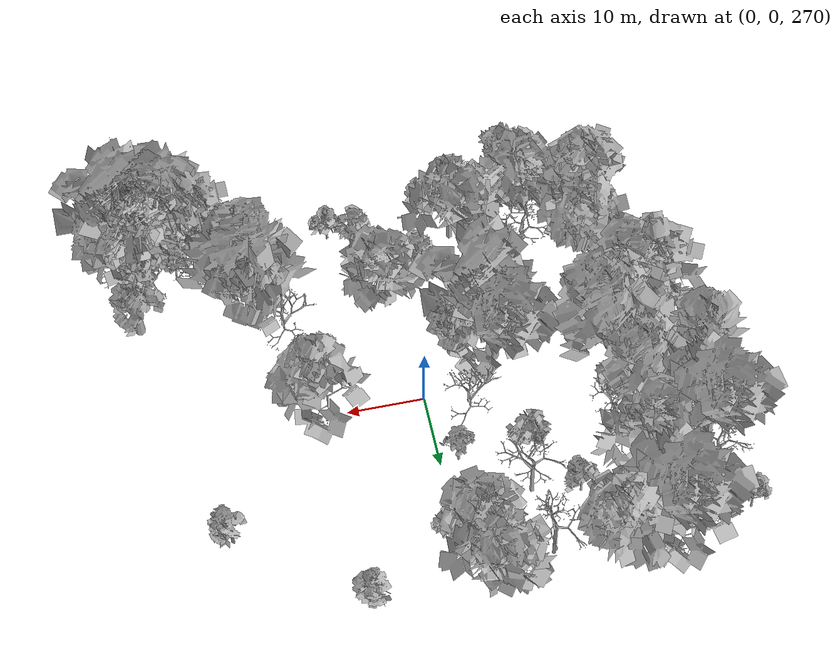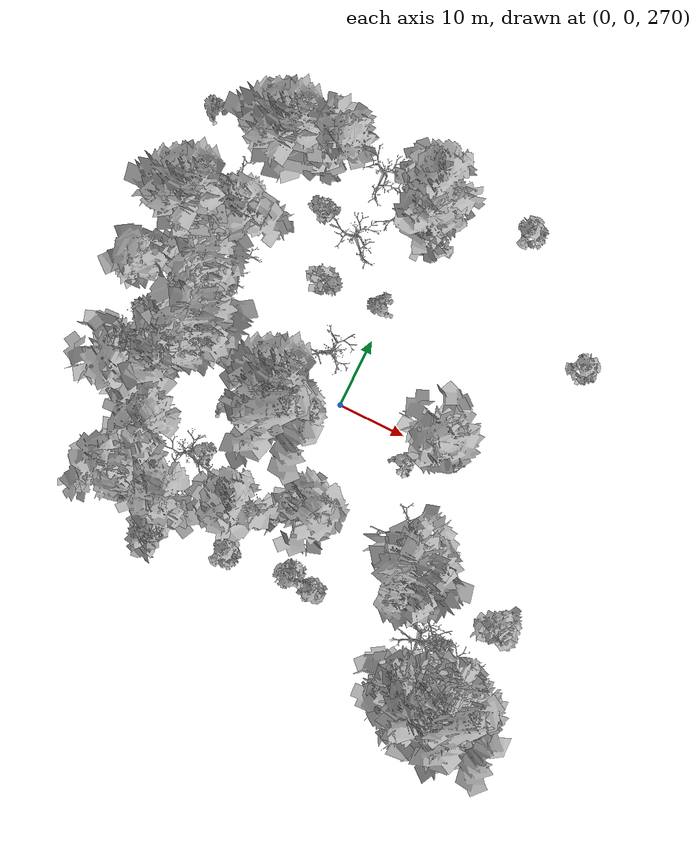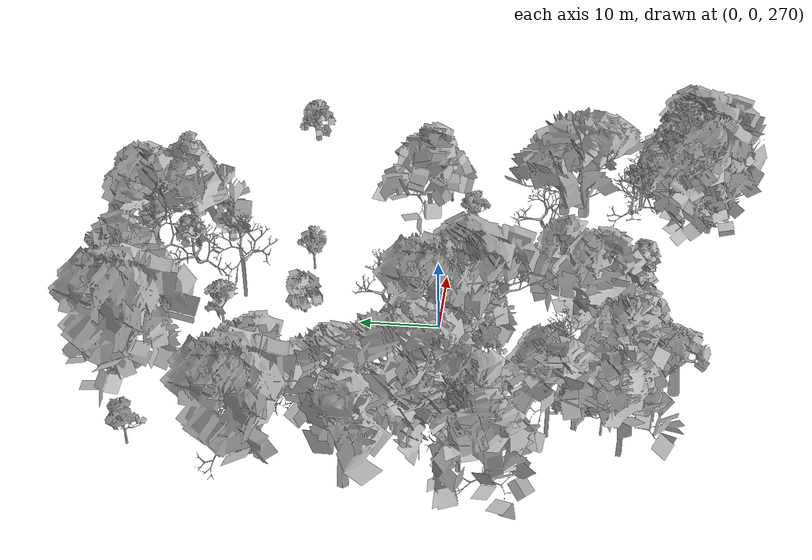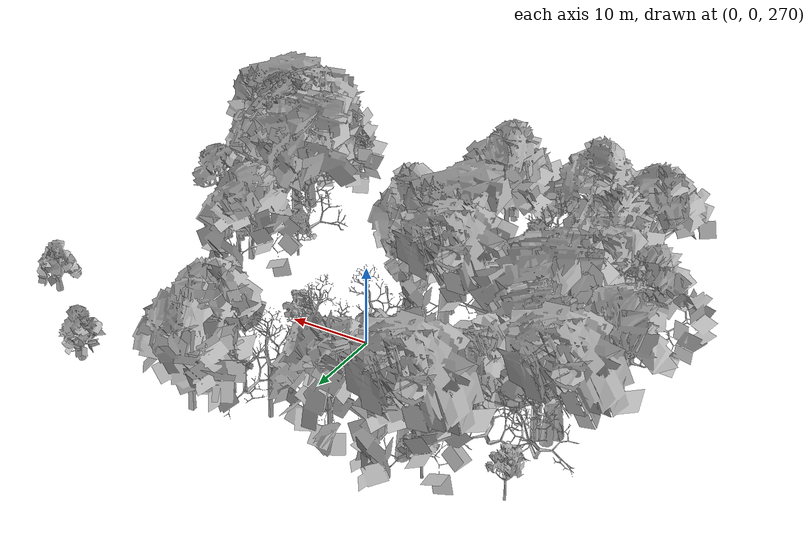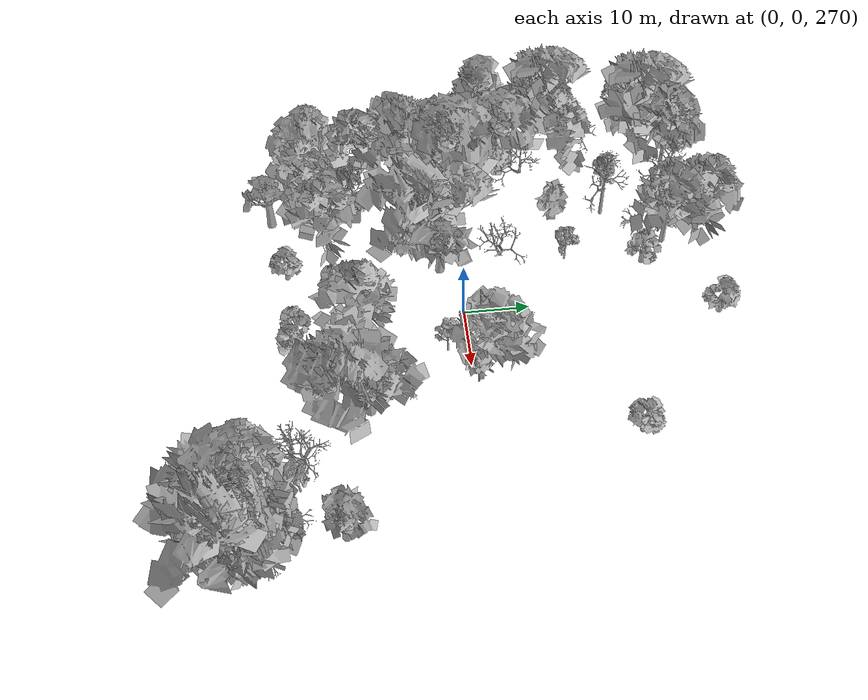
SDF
<sdf version="1.6">
 <world name="default">
  <light name="sun" type="directional">
   <pose>0 0 10 0 -0 0</pose>
   <diffuse>0.8 0.8 0.8 1</diffuse>
   <specular>0.2 0.2 0.2 1</specular>
   <attenuation>
    <range>1000</range>
    <constant>0.9</constant>
    <linear>0.01</linear>
    <quadratic>0.001</quadratic>
   </attenuation>
   <direction>-0.5 0.1 -0.9</direction>
  </light>
  <scene>
   <sky><clouds><speed>12</speed></clouds></sky>
   <ambient>0.4 0.4 0.4 1</ambient>
   <background>0.7 0.7 0.7 1</background>
   <shadows>1</shadows>
  </scene>
  <spherical_coordinates>
   <surface_model>EARTH_WGS84</surface_model>
   <latitude_deg>47.3977</latitude_deg>
   <longitude_deg>8.54559</longitude_deg>
   <elevation>0</elevation>
   <heading_deg>0</heading_deg>
  </spherical_coordinates>
  <physics name="default_physics" default="0" type="ode">
   <ode>
    <solver>
     <type>quick</type>
     <iters>100</iters>
     <sor>1.3</sor>
     <use_dynamic_moi_rescaling>0</use_dynamic_moi_rescaling>
    </solver>
    <constraints>
     <cfm>0</cfm>
     <erp>0.2</erp>
     <contact_max_correcting_vel>100</contact_max_correcting_vel>
     <contact_surface_layer>0.001</contact_surface_layer>
    </constraints>
   </ode>
   <max_step_size>0.002</max_step_size>
   <real_time_factor>1</real_time_factor>
   <real_time_update_rate>500</real_time_update_rate>
  </physics>
  <gravity>0 0 -9.8</gravity>
  <magnetic_field>6e-06 2.3e-05 -4.2e-05</magnetic_field>
  <atmosphere type="adiabatic"/>
  <model name="my_mesh0">
   <pose>31.1026 -31.3747 269.724 0 -0 0.931872</pose>
   <static>1</static>
   <link name="body">
    <visual name="visual">
     <geometry><mesh><uri>model://trees/12.dae</uri><scale>1 1 1</scale></mesh></geometry>
    </visual>
    <collision name="collision">
     <geometry><mesh><uri>model://trees/12.dae</uri><scale>1 1 1</scale></mesh></geometry>
    </collision>
   </link>
  </model>
  <model name="my_mesh1">
   <pose>33.8099 -32.5525 267.701 0 0 -0.004868</pose>
   <static>1</static>
   <link name="body">
    <visual name="visual">
     <geometry><mesh><uri>model://trees/18.dae</uri><scale>1 1 1</scale></mesh></geometry>
    </visual>
    <collision name="collision">
     <geometry><mesh><uri>model://trees/18.dae</uri><scale>1 1 1</scale></mesh></geometry>
    </collision>
   </link>
  </model>
  <model name="my_mesh2">
   <pose>25.4293 -24.8843 271.442 0 0 -1.15736</pose>
   <static>1</static>
   <link name="body">
    <visual name="visual">
     <geometry><mesh><uri>model://trees/17.dae</uri><scale>1 1 1</scale></mesh></geometry>
    </visual>
    <collision name="collision">
     <geometry><mesh><uri>model://trees/17.dae</uri><scale>1 1 1</scale></mesh></geometry>
    </collision>
   </link>
  </model>
  <model name="my_mesh3">
   <pose>22.4646 -33.9259 270.494 0 0 -0.289776</pose>
   <static>1</static>
   <link name="body">
    <visual name="visual">
     <geometry><mesh><uri>model://trees/0.dae</uri><scale>1 1 1</scale></mesh></geometry>
    </visual>
    <collision name="collision">
     <geometry><mesh><uri>model://trees/0.dae</uri><scale>1 1 1</scale></mesh></geometry>
    </collision>
   </link>
  </model>
  <model name="my_mesh4">
   <pose>33.7907 -34.5797 267.599 0 0 -0.288787</pose>
   <static>1</static>
   <link name="body">
    <visual name="visual">
     <geometry><mesh><uri>model://trees/19.dae</uri><scale>1 1 1</scale></mesh></geometry>
    </visual>
    <collision name="collision">
     <geometry><mesh><uri>model://trees/19.dae</uri><scale>1 1 1</scale></mesh></geometry>
    </collision>
   </link>
  </model>
  <model name="my_mesh5">
   <pose>26.1434 -34.6077 269.376 0 -0 1.16215</pose>
   <static>1</static>
   <link name="body">
    <visual name="visual">
     <geometry><mesh><uri>model://trees/17.dae</uri><scale>1 1 1</scale></mesh></geometry>
    </visual>
    <collision name="collision">
     <geometry><mesh><uri>model://trees/17.dae</uri><scale>1 1 1</scale></mesh></geometry>
    </collision>
   </link>
  </model>
  <model name="my_mesh6">
   <pose>34.5556 -31.3941 267.979 0 -0 0.312646</pose>
   <static>1</static>
   <link name="body">
    <visual name="visual">
     <geometry><mesh><uri>model://trees/15.dae</uri><scale>1 1 1</scale></mesh></geometry>
    </visual>
    <collision name="collision">
     <geometry><mesh><uri>model://trees/15.dae</uri><scale>1 1 1</scale></mesh></geometry>
    </collision>
   </link>
  </model>
  <model name="my_mesh7">
   <pose>34.8178 -31.1485 267.979 0 0 -0.198866</pose>
   <static>1</static>
   <link name="body">
    <visual name="visual">
     <geometry><mesh><uri>model://trees/12.dae</uri><scale>1 1 1</scale></mesh></geometry>
    </visual>
    <collision name="collision">
     <geometry><mesh><uri>model://trees/12.dae</uri><scale>1 1 1</scale></mesh></geometry>
    </collision>
   </link>
  </model>
  <model name="my_mesh8">
   <pose>31.8874 -31.155 269.517 0 0 -0.700786</pose>
   <static>1</static>
   <link name="body">
    <visual name="visual">
     <geometry><mesh><uri>model://trees/3.dae</uri><scale>1 1 1</scale></mesh></geometry>
    </visual>
    <collision name="collision">
     <geometry><mesh><uri>model://trees/3.dae</uri><scale>1 1 1</scale></mesh></geometry>
    </collision>
   </link>
  </model>
  <model name="my_mesh9">
   <pose>31.0783 -33.8092 268.895 0 -0 0.447519</pose>
   <static>1</static>
   <link name="body">
    <visual name="visual">
     <geometry><mesh><uri>model://trees/11.dae</uri><scale>1 1 1</scale></mesh></geometry>
    </visual>
    <collision name="collision">
     <geometry><mesh><uri>model://trees/11.dae</uri><scale>1 1 1</scale></mesh></geometry>
    </collision>
   </link>
  </model>
  <model name="my_mesh10">
   <pose>30.291 -30.8305 269.932 0 0 -0.232678</pose>
   <static>1</static>
   <link name="body">
    <visual name="visual">
     <geometry><mesh><uri>model://trees/14.dae</uri><scale>1 1 1</scale></mesh></geometry>
    </visual>
    <collision name="collision">
     <geometry><mesh><uri>model://trees/14.dae</uri><scale>1 1 1</scale></mesh></geometry>
    </collision>
   </link>
  </model>
  <model name="my_mesh11">
   <pose>25.0691 -32.2729 270.421 0 -0 0.745523</pose>
   <static>1</static>
   <link name="body">
    <visual name="visual">
     <geometry><mesh><uri>model://trees/12.dae</uri><scale>1 1 1</scale></mesh></geometry>
    </visual>
    <collision name="collision">
     <geometry><mesh><uri>model://trees/12.dae</uri><scale>1 1 1</scale></mesh></geometry>
    </collision>
   </link>
  </model>
  <model name="my_mesh12">
   <pose>34.5095 -34.1776 267.48 0 -0 0.340906</pose>
   <static>1</static>
   <link name="body">
    <visual name="visual">
     <geometry><mesh><uri>model://trees/11.dae</uri><scale>1 1 1</scale></mesh></geometry>
    </visual>
    <collision name="collision">
     <geometry><mesh><uri>model://trees/11.dae</uri><scale>1 1 1</scale></mesh></geometry>
    </collision>
   </link>
  </model>
  <model name="my_mesh13">
   <pose>34.0505 -29.2574 267.8 0 -0 0.782229</pose>
   <static>1</static>
   <link name="body">
    <visual name="visual">
     <geometry><mesh><uri>model://trees/2.dae</uri><scale>1 1 1</scale></mesh></geometry>
    </visual>
    <collision name="collision">
     <geometry><mesh><uri>model://trees/2.dae</uri><scale>1 1 1</scale></mesh></geometry>
    </collision>
   </link>
  </model>
  <model name="my_mesh14">
   <pose>34.93 -29.8383 268.082 0 -0 0.307728</pose>
   <static>1</static>
   <link name="body">
    <visual name="visual">
     <geometry><mesh><uri>model://trees/6.dae</uri><scale>1 1 1</scale></mesh></geometry>
    </visual>
    <collision name="collision">
     <geometry><mesh><uri>model://trees/6.dae</uri><scale>1 1 1</scale></mesh></geometry>
    </collision>
   </link>
  </model>
  <model name="my_mesh15">
   <pose>31.9906 -30.5978 269.635 0 0 -0.146784</pose>
   <static>1</static>
   <link name="body">
    <visual name="visual">
     <geometry><mesh><uri>model://trees/15.dae</uri><scale>1 1 1</scale></mesh></geometry>
    </visual>
    <collision name="collision">
     <geometry><mesh><uri>model://trees/15.dae</uri><scale>1 1 1</scale></mesh></geometry>
    </collision>
   </link>
  </model>
  <model name="my_mesh16">
   <pose>32.7531 -33.7649 268.288 0 0 -0.085245</pose>
   <static>1</static>
   <link name="body">
    <visual name="visual">
     <geometry><mesh><uri>model://trees/1.dae</uri><scale>1 1 1</scale></mesh></geometry>
    </visual>
    <collision name="collision">
     <geometry><mesh><uri>model://trees/1.dae</uri><scale>1 1 1</scale></mesh></geometry>
    </collision>
   </link>
  </model>
  <model name="my_mesh17">
   <pose>33.8393 -18.7424 269.01 0 0 -0.498978</pose>
   <static>1</static>
   <link name="body">
    <visual name="visual">
     <geometry><mesh><uri>model://trees/7.dae</uri><scale>1 1 1</scale></mesh></geometry>
    </visual>
    <collision name="collision">
     <geometry><mesh><uri>model://trees/7.dae</uri><scale>1 1 1</scale></mesh></geometry>
    </collision>
   </link>
  </model>
  <model name="my_mesh18">
   <pose>33.8963 -27.7631 268.065 0 -0 0.210882</pose>
   <static>1</static>
   <link name="body">
    <visual name="visual">
     <geometry><mesh><uri>model://trees/2.dae</uri><scale>1 1 1</scale></mesh></geometry>
    </visual>
    <collision name="collision">
     <geometry><mesh><uri>model://trees/2.dae</uri><scale>1 1 1</scale></mesh></geometry>
    </collision>
   </link>
  </model>
  <model name="my_mesh19">
   <pose>29.6539 -33.7185 269.181 0 -0 0.797457</pose>
   <static>1</static>
   <link name="body">
    <visual name="visual">
     <geometry><mesh><uri>model://trees/9.dae</uri><scale>1 1 1</scale></mesh></geometry>
    </visual>
    <collision name="collision">
     <geometry><mesh><uri>model://trees/9.dae</uri><scale>1 1 1</scale></mesh></geometry>
    </collision>
   </link>
  </model>
  <model name="my_mesh20">
   <pose>34.9906 -33.5164 267.526 0 -0 0.832937</pose>
   <static>1</static>
   <link name="body">
    <visual name="visual">
     <geometry><mesh><uri>model://trees/5.dae</uri><scale>1 1 1</scale></mesh></geometry>
    </visual>
    <collision name="collision">
     <geometry><mesh><uri>model://trees/5.dae</uri><scale>1 1 1</scale></mesh></geometry>
    </collision>
   </link>
  </model>
  <model name="my_mesh21">
   <pose>32.557 -26.4783 268.569 0 -0 0.275402</pose>
   <static>1</static>
   <link name="body">
    <visual name="visual">
     <geometry><mesh><uri>model://trees/18.dae</uri><scale>1 1 1</scale></mesh></geometry>
    </visual>
    <collision name="collision">
     <geometry><mesh><uri>model://trees/18.dae</uri><scale>1 1 1</scale></mesh></geometry>
    </collision>
   </link>
  </model>
  <model name="my_mesh22">
   <pose>28.0944 -33.9789 269.444 0 -0 0.050311</pose>
   <static>1</static>
   <link name="body">
    <visual name="visual">
     <geometry><mesh><uri>model://trees/8.dae</uri><scale>1 1 1</scale></mesh></geometry>
    </visual>
    <collision name="collision">
     <geometry><mesh><uri>model://trees/8.dae</uri><scale>1 1 1</scale></mesh></geometry>
    </collision>
   </link>
  </model>
  <model name="my_mesh23">
   <pose>34.1503 -33.6252 267.721 0 0 -0.248717</pose>
   <static>1</static>
   <link name="body">
    <visual name="visual">
     <geometry><mesh><uri>model://trees/17.dae</uri><scale>1 1 1</scale></mesh></geometry>
    </visual>
    <collision name="collision">
     <geometry><mesh><uri>model://trees/17.dae</uri><scale>1 1 1</scale></mesh></geometry>
    </collision>
   </link>
  </model>
  <model name="my_mesh24">
   <pose>33.8543 -32.2519 267.701 0 0 -0.456008</pose>
   <static>1</static>
   <link name="body">
    <visual name="visual">
     <geometry><mesh><uri>model://trees/3.dae</uri><scale>1 1 1</scale></mesh></geometry>
    </visual>
    <collision name="collision">
     <geometry><mesh><uri>model://trees/3.dae</uri><scale>1 1 1</scale></mesh></geometry>
    </collision>
   </link>
  </model>
  <model name="my_mesh25">
   <pose>23.9134 -34.1685 270.156 0 0 -0.320294</pose>
   <static>1</static>
   <link name="body">
    <visual name="visual">
     <geometry><mesh><uri>model://trees/0.dae</uri><scale>1 1 1</scale></mesh></geometry>
    </visual>
    <collision name="collision">
     <geometry><mesh><uri>model://trees/0.dae</uri><scale>1 1 1</scale></mesh></geometry>
    </collision>
   </link>
  </model>
  <model name="my_mesh26">
   <pose>33.1181 -34.2174 267.84 0 -0 0.120514</pose>
   <static>1</static>
   <link name="body">
    <visual name="visual">
     <geometry><mesh><uri>model://trees/13.dae</uri><scale>1 1 1</scale></mesh></geometry>
    </visual>
    <collision name="collision">
     <geometry><mesh><uri>model://trees/13.dae</uri><scale>1 1 1</scale></mesh></geometry>
    </collision>
   </link>
  </model>
  <model name="my_mesh27">
   <pose>33.0525 -28.7329 267.479 0 0 -0.120977</pose>
   <static>1</static>
   <link name="body">
    <visual name="visual">
     <geometry><mesh><uri>model://trees/5.dae</uri><scale>1 1 1</scale></mesh></geometry>
    </visual>
    <collision name="collision">
     <geometry><mesh><uri>model://trees/5.dae</uri><scale>1 1 1</scale></mesh></geometry>
    </collision>
   </link>
  </model>
  <model name="my_mesh28">
   <pose>28.9178 -34.6829 269.003 0 -0 1.21639</pose>
   <static>1</static>
   <link name="body">
    <visual name="visual">
     <geometry><mesh><uri>model://trees/8.dae</uri><scale>1 1 1</scale></mesh></geometry>
    </visual>
    <collision name="collision">
     <geometry><mesh><uri>model://trees/8.dae</uri><scale>1 1 1</scale></mesh></geometry>
    </collision>
   </link>
  </model>
  <model name="my_mesh29">
   <pose>34.5866 -34.4306 267.435 0 -0 0.946221</pose>
   <static>1</static>
   <link name="body">
    <visual name="visual">
     <geometry><mesh><uri>model://trees/10.dae</uri><scale>1 1 1</scale></mesh></geometry>
    </visual>
    <collision name="collision">
     <geometry><mesh><uri>model://trees/10.dae</uri><scale>1 1 1</scale></mesh></geometry>
    </collision>
   </link>
  </model>
  <model name="my_mesh30">
   <pose>32.0693 -30.487 269.635 0 0 -0.393448</pose>
   <static>1</static>
   <link name="body">
    <visual name="visual">
     <geometry><mesh><uri>model://trees/15.dae</uri><scale>1 1 1</scale></mesh></geometry>
    </visual>
    <collision name="collision">
     <geometry><mesh><uri>model://trees/15.dae</uri><scale>1 1 1</scale></mesh></geometry>
    </collision>
   </link>
  </model>
  <model name="my_mesh31">
   <pose>33.5761 -34.2659 267.84 0 -0 0.188015</pose>
   <static>1</static>
   <link name="body">
    <visual name="visual">
     <geometry><mesh><uri>model://trees/18.dae</uri><scale>1 1 1</scale></mesh></geometry>
    </visual>
    <collision name="collision">
     <geometry><mesh><uri>model://trees/18.dae</uri><scale>1 1 1</scale></mesh></geometry>
    </collision>
   </link>
  </model>
  <model name="my_mesh32">
   <pose>34.4735 -30.2378 268.044 0 0 -1.21887</pose>
   <static>1</static>
   <link name="body">
    <visual name="visual">
     <geometry><mesh><uri>model://trees/19.dae</uri><scale>1 1 1</scale></mesh></geometry>
    </visual>
    <collision name="collision">
     <geometry><mesh><uri>model://trees/19.dae</uri><scale>1 1 1</scale></mesh></geometry>
    </collision>
   </link>
  </model>
  <model name="my_mesh33">
   <pose>-8.45925 21.848 280.375 0 -0 0.993274</pose>
   <static>1</static>
   <link name="body">
    <visual name="visual">
     <geometry><mesh><uri>model://trees/16.dae</uri><scale>1 1 1</scale></mesh></geometry>
    </visual>
    <collision name="collision">
     <geometry><mesh><uri>model://trees/16.dae</uri><scale>1 1 1</scale></mesh></geometry>
    </collision>
   </link>
  </model>
  <model name="my_mesh34">
   <pose>-0.687838 29.1513 281.349 0 0 -0.092365</pose>
   <static>1</static>
   <link name="body">
    <visual name="visual">
     <geometry><mesh><uri>model://trees/14.dae</uri><scale>1 1 1</scale></mesh></geometry>
    </visual>
    <collision name="collision">
     <geometry><mesh><uri>model://trees/14.dae</uri><scale>1 1 1</scale></mesh></geometry>
    </collision>
   </link>
  </model>
  <model name="my_mesh35">
   <pose>-32.3329 20.4319 279.002 0 -0 1.2259</pose>
   <static>1</static>
   <link name="body">
    <visual name="visual">
     <geometry><mesh><uri>model://trees/19.dae</uri><scale>1 1 1</scale></mesh></geometry>
    </visual>
    <collision name="collision">
     <geometry><mesh><uri>model://trees/19.dae</uri><scale>1 1 1</scale></mesh></geometry>
    </collision>
   </link>
  </model>
  <model name="my_mesh36">
   <pose>4.27185 -24.4907 273.364 0 -0 0.917113</pose>
   <static>1</static>
   <link name="body">
    <visual name="visual">
     <geometry><mesh><uri>model://trees/1.dae</uri><scale>1 1 1</scale></mesh></geometry>
    </visual>
    <collision name="collision">
     <geometry><mesh><uri>model://trees/1.dae</uri><scale>1 1 1</scale></mesh></geometry>
    </collision>
   </link>
  </model>
  <model name="my_mesh37">
   <pose>-26.0773 -22.1924 275.802 0 0 -0.94431</pose>
   <static>1</static>
   <link name="body">
    <visual name="visual">
     <geometry><mesh><uri>model://trees/14.dae</uri><scale>1 1 1</scale></mesh></geometry>
    </visual>
    <collision name="collision">
     <geometry><mesh><uri>model://trees/14.dae</uri><scale>1 1 1</scale></mesh></geometry>
    </collision>
   </link>
  </model>
  <model name="my_mesh38">
   <pose>-26.4045 8.87886 277.696 0 0 -0.828047</pose>
   <static>1</static>
   <link name="body">
    <visual name="visual">
     <geometry><mesh><uri>model://trees/8.dae</uri><scale>1 1 1</scale></mesh></geometry>
    </visual>
    <collision name="collision">
     <geometry><mesh><uri>model://trees/8.dae</uri><scale>1 1 1</scale></mesh></geometry>
    </collision>
   </link>
  </model>
  <model name="my_mesh39">
   <pose>-23.0927 -17.0649 276.288 0 -0 0.028788</pose>
   <static>1</static>
   <link name="body">
    <visual name="visual">
     <geometry><mesh><uri>model://trees/6.dae</uri><scale>1 1 1</scale></mesh></geometry>
    </visual>
    <collision name="collision">
     <geometry><mesh><uri>model://trees/6.dae</uri><scale>1 1 1</scale></mesh></geometry>
    </collision>
   </link>
  </model>
  <model name="my_mesh40">
   <pose>-4.37942 5.98027 277.51 0 0 -0.891978</pose>
   <static>1</static>
   <link name="body">
    <visual name="visual">
     <geometry><mesh><uri>model://trees/18.dae</uri><scale>1 1 1</scale></mesh></geometry>
    </visual>
    <collision name="collision">
     <geometry><mesh><uri>model://trees/18.dae</uri><scale>1 1 1</scale></mesh></geometry>
    </collision>
   </link>
  </model>
  <model name="my_mesh41">
   <pose>15.9338 -11.9811 274.873 0 0 -0.819159</pose>
   <static>1</static>
   <link name="body">
    <visual name="visual">
     <geometry><mesh><uri>model://trees/19.dae</uri><scale>1 1 1</scale></mesh></geometry>
    </visual>
    <collision name="collision">
     <geometry><mesh><uri>model://trees/19.dae</uri><scale>1 1 1</scale></mesh></geometry>
    </collision>
   </link>
  </model>
  <model name="my_mesh42">
   <pose>-23.8428 1.03082 276.481 0 0 -1.04685</pose>
   <static>1</static>
   <link name="body">
    <visual name="visual">
     <geometry><mesh><uri>model://trees/9.dae</uri><scale>1 1 1</scale></mesh></geometry>
    </visual>
    <collision name="collision">
     <geometry><mesh><uri>model://trees/9.dae</uri><scale>1 1 1</scale></mesh></geometry>
    </collision>
   </link>
  </model>
  <model name="my_mesh43">
   <pose>-9.26804 -1.36045 275.266 0 -0 1.41206</pose>
   <static>1</static>
   <link name="body">
    <visual name="visual">
     <geometry><mesh><uri>model://trees/9.dae</uri><scale>1 1 1</scale></mesh></geometry>
    </visual>
    <collision name="collision">
     <geometry><mesh><uri>model://trees/9.dae</uri><scale>1 1 1</scale></mesh></geometry>
    </collision>
   </link>
  </model>
  <model name="my_mesh44">
   <pose>-8.53742 -6.68953 275.155 0 -0 0.958757</pose>
   <static>1</static>
   <link name="body">
    <visual name="visual">
     <geometry><mesh><uri>model://trees/10.dae</uri><scale>1 1 1</scale></mesh></geometry>
    </visual>
    <collision name="collision">
     <geometry><mesh><uri>model://trees/10.dae</uri><scale>1 1 1</scale></mesh></geometry>
    </collision>
   </link>
  </model>
  <model name="my_mesh45">
   <pose>-27.289 -6.30944 275.84 0 -0 1.03035</pose>
   <static>1</static>
   <link name="body">
    <visual name="visual">
     <geometry><mesh><uri>model://trees/11.dae</uri><scale>1 1 1</scale></mesh></geometry>
    </visual>
    <collision name="collision">
     <geometry><mesh><uri>model://trees/11.dae</uri><scale>1 1 1</scale></mesh></geometry>
    </collision>
   </link>
  </model>
  <model name="my_mesh46">
   <pose>-14.0495 -14.6839 277.298 0 0 -1.18832</pose>
   <static>1</static>
   <link name="body">
    <visual name="visual">
     <geometry><mesh><uri>model://trees/3.dae</uri><scale>1 1 1</scale></mesh></geometry>
    </visual>
    <collision name="collision">
     <geometry><mesh><uri>model://trees/3.dae</uri><scale>1 1 1</scale></mesh></geometry>
    </collision>
   </link>
  </model>
  <model name="my_mesh47">
   <pose>-24.7135 31.0055 282.031 0 0 -0.747268</pose>
   <static>1</static>
   <link name="body">
    <visual name="visual">
     <geometry><mesh><uri>model://trees/12.dae</uri><scale>1 1 1</scale></mesh></geometry>
    </visual>
    <collision name="collision">
     <geometry><mesh><uri>model://trees/12.dae</uri><scale>1 1 1</scale></mesh></geometry>
    </collision>
   </link>
  </model>
  <model name="my_mesh48">
   <pose>-17.7005 -23.0179 276.313 0 -0 1.52118</pose>
   <static>1</static>
   <link name="body">
    <visual name="visual">
     <geometry><mesh><uri>model://trees/15.dae</uri><scale>1 1 1</scale></mesh></geometry>
    </visual>
    <collision name="collision">
     <geometry><mesh><uri>model://trees/15.dae</uri><scale>1 1 1</scale></mesh></geometry>
    </collision>
   </link>
  </model>
  <model name="my_mesh49">
   <pose>-5.15814 -25.7461 275.599 0 0 -0.905477</pose>
   <static>1</static>
   <link name="body">
    <visual name="visual">
     <geometry><mesh><uri>model://trees/1.dae</uri><scale>1 1 1</scale></mesh></geometry>
    </visual>
    <collision name="collision">
     <geometry><mesh><uri>model://trees/1.dae</uri><scale>1 1 1</scale></mesh></geometry>
    </collision>
   </link>
  </model>
  <model name="my_mesh50">
   <pose>-33.6908 29.3934 280.304 0 -0 0.393131</pose>
   <static>1</static>
   <link name="body">
    <visual name="visual">
     <geometry><mesh><uri>model://trees/3.dae</uri><scale>1 1 1</scale></mesh></geometry>
    </visual>
    <collision name="collision">
     <geometry><mesh><uri>model://trees/3.dae</uri><scale>1 1 1</scale></mesh></geometry>
    </collision>
   </link>
  </model>
  <model name="my_mesh51">
   <pose>2.08442 25.5793 280.456 0 -0 1.31009</pose>
   <static>1</static>
   <link name="body">
    <visual name="visual">
     <geometry><mesh><uri>model://trees/1.dae</uri><scale>1 1 1</scale></mesh></geometry>
    </visual>
    <collision name="collision">
     <geometry><mesh><uri>model://trees/1.dae</uri><scale>1 1 1</scale></mesh></geometry>
    </collision>
   </link>
  </model>
  <model name="my_mesh52">
   <pose>-26.3218 -0.535688 276.09 0 -0 1.00657</pose>
   <static>1</static>
   <link name="body">
    <visual name="visual">
     <geometry><mesh><uri>model://trees/13.dae</uri><scale>1 1 1</scale></mesh></geometry>
    </visual>
    <collision name="collision">
     <geometry><mesh><uri>model://trees/13.dae</uri><scale>1 1 1</scale></mesh></geometry>
    </collision>
   </link>
  </model>
  <model name="my_mesh53">
   <pose>-1.03706 14.9918 279.066 0 -0 1.2468</pose>
   <static>1</static>
   <link name="body">
    <visual name="visual">
     <geometry><mesh><uri>model://trees/3.dae</uri><scale>1 1 1</scale></mesh></geometry>
    </visual>
    <collision name="collision">
     <geometry><mesh><uri>model://trees/3.dae</uri><scale>1 1 1</scale></mesh></geometry>
    </collision>
   </link>
  </model>
  <model name="my_mesh54">
   <pose>-31.8788 -8.27893 276.123 0 -0 0.233281</pose>
   <static>1</static>
   <link name="body">
    <visual name="visual">
     <geometry><mesh><uri>model://trees/12.dae</uri><scale>1 1 1</scale></mesh></geometry>
    </visual>
    <collision name="collision">
     <geometry><mesh><uri>model://trees/12.dae</uri><scale>1 1 1</scale></mesh></geometry>
    </collision>
   </link>
  </model>
  <model name="my_mesh55">
   <pose>-13.9238 -7.14278 276.763 0 0 -0.331447</pose>
   <static>1</static>
   <link name="body">
    <visual name="visual">
     <geometry><mesh><uri>model://trees/3.dae</uri><scale>1 1 1</scale></mesh></geometry>
    </visual>
    <collision name="collision">
     <geometry><mesh><uri>model://trees/3.dae</uri><scale>1 1 1</scale></mesh></geometry>
    </collision>
   </link>
  </model>
  <model name="my_mesh56">
   <pose>-28.8847 9.24769 277.662 0 -0 1.06537</pose>
   <static>1</static>
   <link name="body">
    <visual name="visual">
     <geometry><mesh><uri>model://trees/2.dae</uri><scale>1 1 1</scale></mesh></geometry>
    </visual>
    <collision name="collision">
     <geometry><mesh><uri>model://trees/2.dae</uri><scale>1 1 1</scale></mesh></geometry>
    </collision>
   </link>
  </model>
  <model name="my_mesh57">
   <pose>-23.7865 18.5887 279.026 0 -0 1.4877</pose>
   <static>1</static>
   <link name="body">
    <visual name="visual">
     <geometry><mesh><uri>model://trees/13.dae</uri><scale>1 1 1</scale></mesh></geometry>
    </visual>
    <collision name="collision">
     <geometry><mesh><uri>model://trees/13.dae</uri><scale>1 1 1</scale></mesh></geometry>
    </collision>
   </link>
  </model>
  <model name="my_mesh58">
   <pose>-7.50835 -19.3554 277.445 0 -0 1.30387</pose>
   <static>1</static>
   <link name="body">
    <visual name="visual">
     <geometry><mesh><uri>model://trees/14.dae</uri><scale>1 1 1</scale></mesh></geometry>
    </visual>
    <collision name="collision">
     <geometry><mesh><uri>model://trees/14.dae</uri><scale>1 1 1</scale></mesh></geometry>
    </collision>
   </link>
  </model>
  <model name="my_mesh59">
   <pose>-27.5812 21.4169 279.643 0 0 -1.46145</pose>
   <static>1</static>
   <link name="body">
    <visual name="visual">
     <geometry><mesh><uri>model://trees/19.dae</uri><scale>1 1 1</scale></mesh></geometry>
    </visual>
    <collision name="collision">
     <geometry><mesh><uri>model://trees/19.dae</uri><scale>1 1 1</scale></mesh></geometry>
    </collision>
   </link>
  </model>
  <model name="my_mesh60">
   <pose>-16.7863 33.1702 282.297 0 -0 0.122082</pose>
   <static>1</static>
   <link name="body">
    <visual name="visual">
     <geometry><mesh><uri>model://trees/15.dae</uri><scale>1 1 1</scale></mesh></geometry>
    </visual>
    <collision name="collision">
     <geometry><mesh><uri>model://trees/15.dae</uri><scale>1 1 1</scale></mesh></geometry>
    </collision>
   </link>
  </model>
  <model name="my_mesh61">
   <pose>-30.7007 18.1057 278.643 0 -0 0.751099</pose>
   <static>1</static>
   <link name="body">
    <visual name="visual">
     <geometry><mesh><uri>model://trees/17.dae</uri><scale>1 1 1</scale></mesh></geometry>
    </visual>
    <collision name="collision">
     <geometry><mesh><uri>model://trees/17.dae</uri><scale>1 1 1</scale></mesh></geometry>
    </collision>
   </link>
  </model>
  <model name="my_mesh62">
   <pose>-15.9009 -15.2348 277.084 0 -0 1.32244</pose>
   <static>1</static>
   <link name="body">
    <visual name="visual">
     <geometry><mesh><uri>model://trees/17.dae</uri><scale>1 1 1</scale></mesh></geometry>
    </visual>
    <collision name="collision">
     <geometry><mesh><uri>model://trees/17.dae</uri><scale>1 1 1</scale></mesh></geometry>
    </collision>
   </link>
  </model>
  <model name="my_mesh63">
   <pose>-31.7504 17.1058 278.493 0 -0 1.55665</pose>
   <static>1</static>
   <link name="body">
    <visual name="visual">
     <geometry><mesh><uri>model://trees/9.dae</uri><scale>1 1 1</scale></mesh></geometry>
    </visual>
    <collision name="collision">
     <geometry><mesh><uri>model://trees/9.dae</uri><scale>1 1 1</scale></mesh></geometry>
    </collision>
   </link>
  </model>
  <model name="my_mesh64">
   <pose>-26.2285 5.3641 277.285 0 -0 1.11267</pose>
   <static>1</static>
   <link name="body">
    <visual name="visual">
     <geometry><mesh><uri>model://trees/7.dae</uri><scale>1 1 1</scale></mesh></geometry>
    </visual>
    <collision name="collision">
     <geometry><mesh><uri>model://trees/7.dae</uri><scale>1 1 1</scale></mesh></geometry>
    </collision>
   </link>
  </model>
  <model name="my_mesh65">
   <pose>-30.7983 17.0613 278.435 0 -0 0.755004</pose>
   <static>1</static>
   <link name="body">
    <visual name="visual">
     <geometry><mesh><uri>model://trees/16.dae</uri><scale>1 1 1</scale></mesh></geometry>
    </visual>
    <collision name="collision">
     <geometry><mesh><uri>model://trees/16.dae</uri><scale>1 1 1</scale></mesh></geometry>
    </collision>
   </link>
  </model>
  <model name="my_mesh66">
   <pose>-9.82561 14.6079 279.661 0 0 -0.448983</pose>
   <static>1</static>
   <link name="body">
    <visual name="visual">
     <geometry><mesh><uri>model://trees/4.dae</uri><scale>1 1 1</scale></mesh></geometry>
    </visual>
    <collision name="collision">
     <geometry><mesh><uri>model://trees/4.dae</uri><scale>1 1 1</scale></mesh></geometry>
    </collision>
   </link>
  </model>
  <model name="my_mesh67">
   <pose>-23.4352 30.9125 282.077 0 -0 1.44804</pose>
   <static>1</static>
   <link name="body">
    <visual name="visual">
     <geometry><mesh><uri>model://trees/9.dae</uri><scale>1 1 1</scale></mesh></geometry>
    </visual>
    <collision name="collision">
     <geometry><mesh><uri>model://trees/9.dae</uri><scale>1 1 1</scale></mesh></geometry>
    </collision>
   </link>
  </model>
  <model name="my_mesh68">
   <pose>-22.575 8.23366 277.828 0 0 -0.767754</pose>
   <static>1</static>
   <link name="body">
    <visual name="visual">
     <geometry><mesh><uri>model://trees/5.dae</uri><scale>1 1 1</scale></mesh></geometry>
    </visual>
    <collision name="collision">
     <geometry><mesh><uri>model://trees/5.dae</uri><scale>1 1 1</scale></mesh></geometry>
    </collision>
   </link>
  </model>
  <model name="my_mesh69">
   <pose>-8.78658 31.4796 281.814 0 -0 0.27624</pose>
   <static>1</static>
   <link name="body">
    <visual name="visual">
     <geometry><mesh><uri>model://trees/16.dae</uri><scale>1 1 1</scale></mesh></geometry>
    </visual>
    <collision name="collision">
     <geometry><mesh><uri>model://trees/16.dae</uri><scale>1 1 1</scale></mesh></geometry>
    </collision>
   </link>
  </model>
  <model name="my_mesh70">
   <pose>11.7042 -3.52661 276.491 0 0 -1.25922</pose>
   <static>1</static>
   <link name="body">
    <visual name="visual">
     <geometry><mesh><uri>model://trees/3.dae</uri><scale>1 1 1</scale></mesh></geometry>
    </visual>
    <collision name="collision">
     <geometry><mesh><uri>model://trees/3.dae</uri><scale>1 1 1</scale></mesh></geometry>
    </collision>
   </link>
  </model>
  <model name="my_mesh71">
   <pose>19.0236 -17.1874 274.685 0 0 -1.54853</pose>
   <static>1</static>
   <link name="body">
    <visual name="visual">
     <geometry><mesh><uri>model://trees/9.dae</uri><scale>1 1 1</scale></mesh></geometry>
    </visual>
    <collision name="collision">
     <geometry><mesh><uri>model://trees/9.dae</uri><scale>1 1 1</scale></mesh></geometry>
    </collision>
   </link>
  </model>
  <model name="my_mesh72">
   <pose>2.58931 -15.7244 273.604 0 -0 1.52862</pose>
   <static>1</static>
   <link name="body">
    <visual name="visual">
     <geometry><mesh><uri>model://trees/12.dae</uri><scale>1 1 1</scale></mesh></geometry>
    </visual>
    <collision name="collision">
     <geometry><mesh><uri>model://trees/12.dae</uri><scale>1 1 1</scale></mesh></geometry>
    </collision>
   </link>
  </model>
  <model name="my_mesh73">
   <pose>-32.2544 15.7024 278.501 0 0 -0.877928</pose>
   <static>1</static>
   <link name="body">
    <visual name="visual">
     <geometry><mesh><uri>model://trees/8.dae</uri><scale>1 1 1</scale></mesh></geometry>
    </visual>
    <collision name="collision">
     <geometry><mesh><uri>model://trees/8.dae</uri><scale>1 1 1</scale></mesh></geometry>
    </collision>
   </link>
  </model>
  <model name="my_mesh74">
   <pose>-16.0814 -28.2826 276.199 0 -0 0.835653</pose>
   <static>1</static>
   <link name="body">
    <visual name="visual">
     <geometry><mesh><uri>model://trees/7.dae</uri><scale>1 1 1</scale></mesh></geometry>
    </visual>
    <collision name="collision">
     <geometry><mesh><uri>model://trees/7.dae</uri><scale>1 1 1</scale></mesh></geometry>
    </collision>
   </link>
  </model>
  <model name="my_mesh75">
   <pose>28.452 19.4078 278.236 0 0 -1.54774</pose>
   <static>1</static>
   <link name="body">
    <visual name="visual">
     <geometry><mesh><uri>model://trees/1.dae</uri><scale>1 1 1</scale></mesh></geometry>
    </visual>
    <collision name="collision">
     <geometry><mesh><uri>model://trees/1.dae</uri><scale>1 1 1</scale></mesh></geometry>
    </collision>
   </link>
  </model>
  <model name="my_mesh76">
   <pose>14.0562 2.48482 278.354 0 0 -0.486543</pose>
   <static>1</static>
   <link name="body">
    <visual name="visual">
     <geometry><mesh><uri>model://trees/12.dae</uri><scale>1 1 1</scale></mesh></geometry>
    </visual>
    <collision name="collision">
     <geometry><mesh><uri>model://trees/12.dae</uri><scale>1 1 1</scale></mesh></geometry>
    </collision>
   </link>
  </model>
  <model name="my_mesh77">
   <pose>-2.85512 29.2259 281.225 0 -0 1.25018</pose>
   <static>1</static>
   <link name="body">
    <visual name="visual">
     <geometry><mesh><uri>model://trees/2.dae</uri><scale>1 1 1</scale></mesh></geometry>
    </visual>
    <collision name="collision">
     <geometry><mesh><uri>model://trees/2.dae</uri><scale>1 1 1</scale></mesh></geometry>
    </collision>
   </link>
  </model>
  <model name="my_mesh78">
   <pose>-25.7619 -2.7688 275.695 0 0 -1.14936</pose>
   <static>1</static>
   <link name="body">
    <visual name="visual">
     <geometry><mesh><uri>model://trees/14.dae</uri><scale>1 1 1</scale></mesh></geometry>
    </visual>
    <collision name="collision">
     <geometry><mesh><uri>model://trees/14.dae</uri><scale>1 1 1</scale></mesh></geometry>
    </collision>
   </link>
  </model>
  <model name="my_mesh79">
   <pose>-14.2045 23.2277 280.698 0 0 -1.15283</pose>
   <static>1</static>
   <link name="body">
    <visual name="visual">
     <geometry><mesh><uri>model://trees/6.dae</uri><scale>1 1 1</scale></mesh></geometry>
    </visual>
    <collision name="collision">
     <geometry><mesh><uri>model://trees/6.dae</uri><scale>1 1 1</scale></mesh></geometry>
    </collision>
   </link>
  </model>
  <model name="my_mesh80">
   <pose>-4.30277 -3.11348 275.33 0 0 -0.006715</pose>
   <static>1</static>
   <link name="body">
    <visual name="visual">
     <geometry><mesh><uri>model://trees/7.dae</uri><scale>1 1 1</scale></mesh></geometry>
    </visual>
    <collision name="collision">
     <geometry><mesh><uri>model://trees/7.dae</uri><scale>1 1 1</scale></mesh></geometry>
    </collision>
   </link>
  </model>
  <model name="my_mesh81">
   <pose>17.5881 0.012292 276.833 0 0 -1.54452</pose>
   <static>1</static>
   <link name="body">
    <visual name="visual">
     <geometry><mesh><uri>model://trees/2.dae</uri><scale>1 1 1</scale></mesh></geometry>
    </visual>
    <collision name="collision">
     <geometry><mesh><uri>model://trees/2.dae</uri><scale>1 1 1</scale></mesh></geometry>
    </collision>
   </link>
  </model>
  <model name="my_mesh82">
   <pose>-3.62767 28.5002 281.137 0 0 -0.313466</pose>
   <static>1</static>
   <link name="body">
    <visual name="visual">
     <geometry><mesh><uri>model://trees/19.dae</uri><scale>1 1 1</scale></mesh></geometry>
    </visual>
    <collision name="collision">
     <geometry><mesh><uri>model://trees/19.dae</uri><scale>1 1 1</scale></mesh></geometry>
    </collision>
   </link>
  </model>
  <model name="my_mesh83">
   <pose>27.93 -24.3917 271.114 0 -0 0.614917</pose>
   <static>1</static>
   <link name="body">
    <visual name="visual">
     <geometry><mesh><uri>model://trees/3.dae</uri><scale>1 1 1</scale></mesh></geometry>
    </visual>
    <collision name="collision">
     <geometry><mesh><uri>model://trees/3.dae</uri><scale>1 1 1</scale></mesh></geometry>
    </collision>
   </link>
  </model>
  <model name="my_mesh84">
   <pose>-1.19715 34.0885 281.524 0 -0 0.926128</pose>
   <static>1</static>
   <link name="body">
    <visual name="visual">
     <geometry><mesh><uri>model://trees/14.dae</uri><scale>1 1 1</scale></mesh></geometry>
    </visual>
    <collision name="collision">
     <geometry><mesh><uri>model://trees/14.dae</uri><scale>1 1 1</scale></mesh></geometry>
    </collision>
   </link>
  </model>
  <model name="my_mesh85">
   <pose>24.1933 -23.7279 271.722 0 -0 0.404103</pose>
   <static>1</static>
   <link name="body">
    <visual name="visual">
     <geometry><mesh><uri>model://trees/19.dae</uri><scale>1 1 1</scale></mesh></geometry>
    </visual>
    <collision name="collision">
     <geometry><mesh><uri>model://trees/19.dae</uri><scale>1 1 1</scale></mesh></geometry>
    </collision>
   </link>
  </model>
  <model name="my_mesh86">
   <pose>7.62277 -25.1745 273.528 0 -0 1.19607</pose>
   <static>1</static>
   <link name="body">
    <visual name="visual">
     <geometry><mesh><uri>model://trees/2.dae</uri><scale>1 1 1</scale></mesh></geometry>
    </visual>
    <collision name="collision">
     <geometry><mesh><uri>model://trees/2.dae</uri><scale>1 1 1</scale></mesh></geometry>
    </collision>
   </link>
  </model>
  <model name="my_mesh87">
   <pose>19.3292 -14.6457 274.695 0 -0 0.04331</pose>
   <static>1</static>
   <link name="body">
    <visual name="visual">
     <geometry><mesh><uri>model://trees/8.dae</uri><scale>1 1 1</scale></mesh></geometry>
    </visual>
    <collision name="collision">
     <geometry><mesh><uri>model://trees/8.dae</uri><scale>1 1 1</scale></mesh></geometry>
    </collision>
   </link>
  </model>
  <model name="my_mesh88">
   <pose>-21.6936 11.7384 278.183 0 -0 0.47326</pose>
   <static>1</static>
   <link name="body">
    <visual name="visual">
     <geometry><mesh><uri>model://trees/18.dae</uri><scale>1 1 1</scale></mesh></geometry>
    </visual>
    <collision name="collision">
     <geometry><mesh><uri>model://trees/18.dae</uri><scale>1 1 1</scale></mesh></geometry>
    </collision>
   </link>
  </model>
  <model name="my_mesh89">
   <pose>-16.5297 -22.8152 276.512 0 0 -0.944801</pose>
   <static>1</static>
   <link name="body">
    <visual name="visual">
     <geometry><mesh><uri>model://trees/18.dae</uri><scale>1 1 1</scale></mesh></geometry>
    </visual>
    <collision name="collision">
     <geometry><mesh><uri>model://trees/18.dae</uri><scale>1 1 1</scale></mesh></geometry>
    </collision>
   </link>
  </model>
  <model name="my_mesh90">
   <pose>-24.3123 -14.2487 276.147 0 -0 0.76338</pose>
   <static>1</static>
   <link name="body">
    <visual name="visual">
     <geometry><mesh><uri>model://trees/15.dae</uri><scale>1 1 1</scale></mesh></geometry>
    </visual>
    <collision name="collision">
     <geometry><mesh><uri>model://trees/15.dae</uri><scale>1 1 1</scale></mesh></geometry>
    </collision>
   </link>
  </model>
  <model name="my_mesh91">
   <pose>32.7166 -26.3355 268.569 0 -0 0.951896</pose>
   <static>1</static>
   <link name="body">
    <visual name="visual">
     <geometry><mesh><uri>model://trees/5.dae</uri><scale>1 1 1</scale></mesh></geometry>
    </visual>
    <collision name="collision">
     <geometry><mesh><uri>model://trees/5.dae</uri><scale>1 1 1</scale></mesh></geometry>
    </collision>
   </link>
  </model>
  <model name="my_mesh92">
   <pose>-23.5931 -20.1909 276.17 0 0 -0.65109</pose>
   <static>1</static>
   <link name="body">
    <visual name="visual">
     <geometry><mesh><uri>model://trees/3.dae</uri><scale>1 1 1</scale></mesh></geometry>
    </visual>
    <collision name="collision">
     <geometry><mesh><uri>model://trees/3.dae</uri><scale>1 1 1</scale></mesh></geometry>
    </collision>
   </link>
  </model>
  <model name="my_mesh93">
   <pose>-34.3633 6.55127 277.158 0 0 -0.908672</pose>
   <static>1</static>
   <link name="body">
    <visual name="visual">
     <geometry><mesh><uri>model://trees/11.dae</uri><scale>1 1 1</scale></mesh></geometry>
    </visual>
    <collision name="collision">
     <geometry><mesh><uri>model://trees/11.dae</uri><scale>1 1 1</scale></mesh></geometry>
    </collision>
   </link>
  </model>
  <model name="my_mesh94">
   <pose>-30.4501 -5.16981 276.102 0 -0 0.33542</pose>
   <static>1</static>
   <link name="body">
    <visual name="visual">
     <geometry><mesh><uri>model://trees/16.dae</uri><scale>1 1 1</scale></mesh></geometry>
    </visual>
    <collision name="collision">
     <geometry><mesh><uri>model://trees/16.dae</uri><scale>1 1 1</scale></mesh></geometry>
    </collision>
   </link>
  </model>
  <model name="my_mesh95">
   <pose>-8.61153 -4.29691 274.639 0 0 -0.873164</pose>
   <static>1</static>
   <link name="body">
    <visual name="visual">
     <geometry><mesh><uri>model://trees/12.dae</uri><scale>1 1 1</scale></mesh></geometry>
    </visual>
    <collision name="collision">
     <geometry><mesh><uri>model://trees/12.dae</uri><scale>1 1 1</scale></mesh></geometry>
    </collision>
   </link>
  </model>
  <model name="my_mesh96">
   <pose>-3.10169 -18.807 273.421 0 -0 1.16695</pose>
   <static>1</static>
   <link name="body">
    <visual name="visual">
     <geometry><mesh><uri>model://trees/0.dae</uri><scale>1 1 1</scale></mesh></geometry>
    </visual>
    <collision name="collision">
     <geometry><mesh><uri>model://trees/0.dae</uri><scale>1 1 1</scale></mesh></geometry>
    </collision>
   </link>
  </model>
  <model name="my_mesh97">
   <pose>-26.349 32.1434 281.698 0 -0 1.55688</pose>
   <static>1</static>
   <link name="body">
    <visual name="visual">
     <geometry><mesh><uri>model://trees/2.dae</uri><scale>1 1 1</scale></mesh></geometry>
    </visual>
    <collision name="collision">
     <geometry><mesh><uri>model://trees/2.dae</uri><scale>1 1 1</scale></mesh></geometry>
    </collision>
   </link>
  </model>
  <model name="my_mesh98">
   <pose>13.4871 33.2011 281.88 0 0 -0.638929</pose>
   <static>1</static>
   <link name="body">
    <visual name="visual">
     <geometry><mesh><uri>model://trees/0.dae</uri><scale>1 1 1</scale></mesh></geometry>
    </visual>
    <collision name="collision">
     <geometry><mesh><uri>model://trees/0.dae</uri><scale>1 1 1</scale></mesh></geometry>
    </collision>
   </link>
  </model>
 </world>
</sdf>
